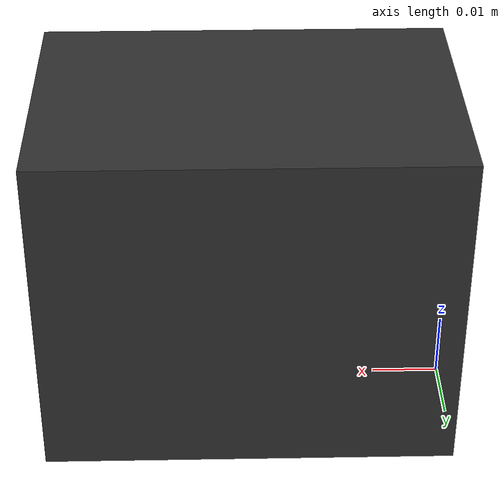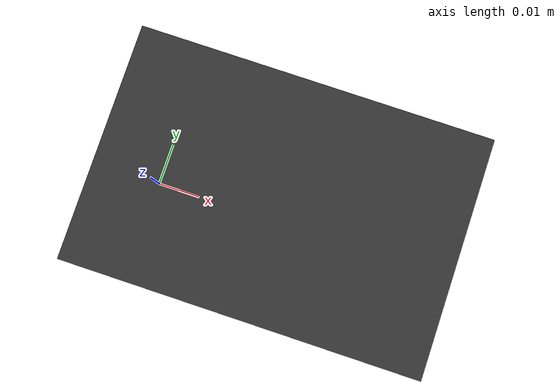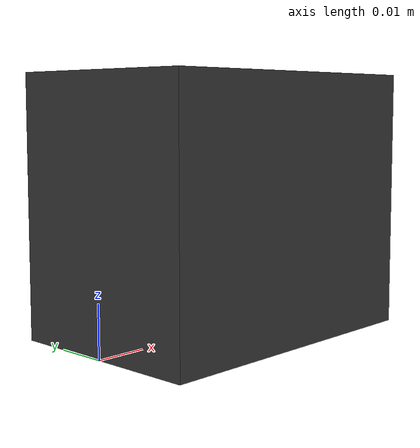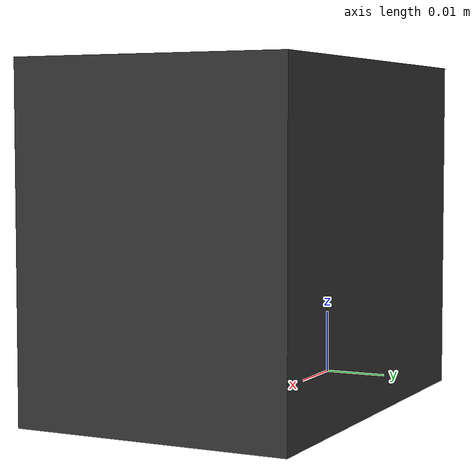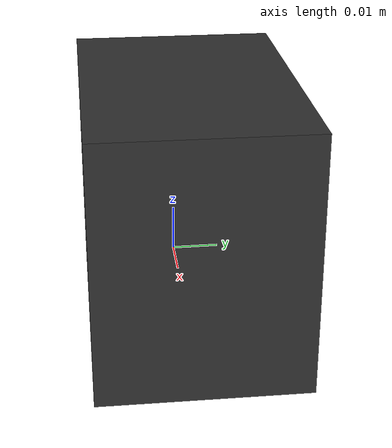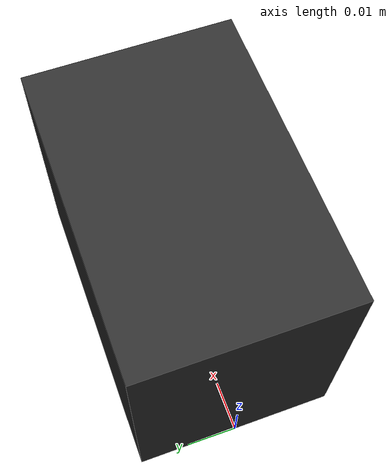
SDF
<?xml version="1.0" encoding="UTF-8"?>
<sdf version="1.9">
  <model name="mono_cam">
    <pose>0 0 0 0 0 0</pose>
    <self_collide>false</self_collide>
    <static>false</static>

    <link name="mono_cam/base_link">

      <inertial>
        <pose>0.03 0.03 0.03 0 0 0</pose>
        <mass>0.050</mass>
        <inertia>
          <ixx>0.00004</ixx>
          <ixy>0</ixy>
          <ixz>0</ixz>
          <iyy>0.00004</iyy>
          <iyz>0</iyz>
          <izz>0.00004</izz>
        </inertia>
      </inertial>

      <visual name="mono_cam/visual">
        <pose>0.03 0 0.025 0 0 0</pose>
        <geometry>
          <box>
            <size>0.06 0.04 0.05</size>
          </box>
        </geometry>
        <material>
          <ambient>0.18 0.18 0.18 1</ambient>
          <diffuse>0.18 0.18 0.18 1</diffuse>
          <specular>0.05 0.05 0.05 1</specular>
        </material>
      </visual>

      <sensor name="imager" type="camera">
        <pose>0 0 0 0 0 0</pose>

        <camera>

          <image>
            <width>1280</width>
            <height>720</height>
            <format>R8G8B8</format>
          </image>

          <clip>
            <near>0.015</near>
            <far>3000</far>
          </clip>

          <lens>
            <intrinsics>
              <fx>984.0293956169063</fx>
              <fy>978.0169725826389</fy>
              <cx>640.4458836683775</cx>
              <cy>360.4530994081536</cy>
            </intrinsics>

            <distortion>
              <k1>0.009424</k1>
              <k2>-0.005972</k2>
              <k3>0.0</k3>
              <p1>0.010292</p1>
              <p2>-0.006974</p2>
            </distortion>
          </lens>

        </camera>

        <always_on>true</always_on>
        <update_rate>30</update_rate>
        <visualize>true</visualize>
        <topic>camera</topic>

      </sensor>

      <gravity>true</gravity>
      <velocity_decay/>

    </link>
  </model>
</sdf>
